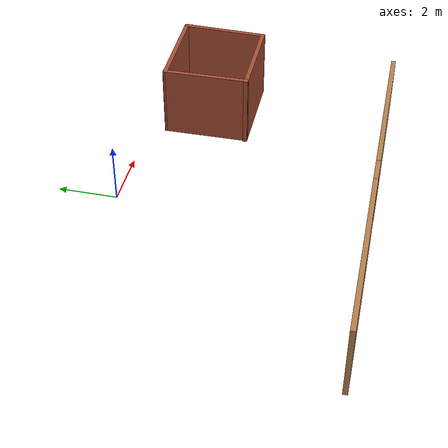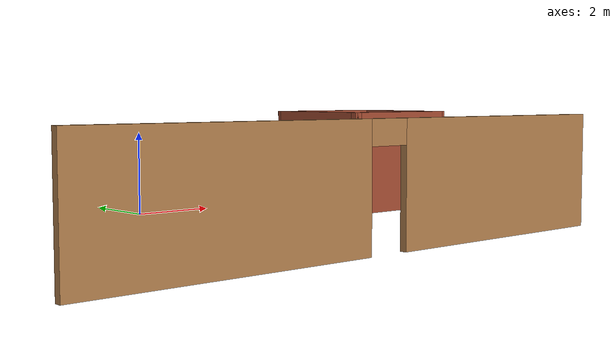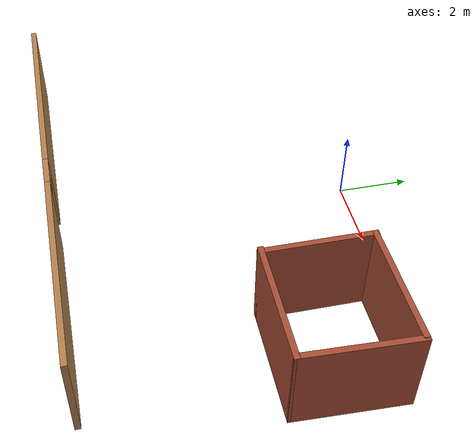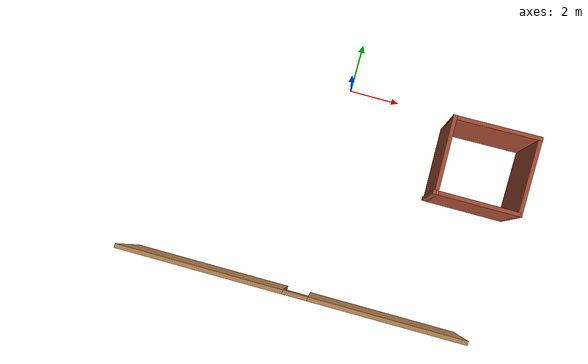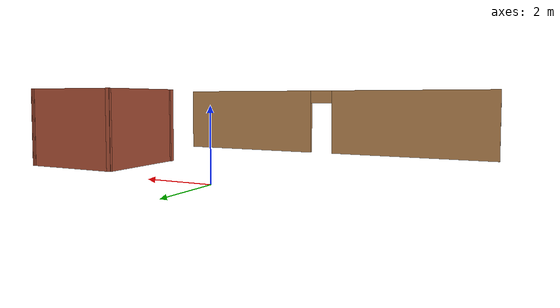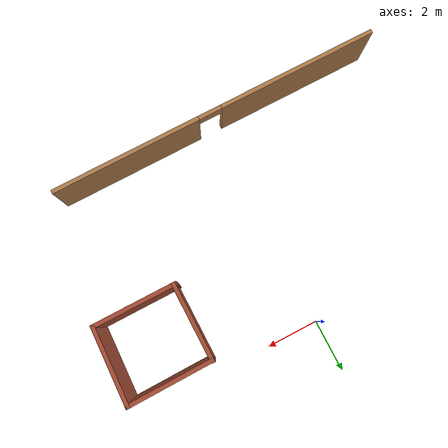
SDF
<?xml version='1.0'?>
<sdf version='1.7'>
  <model name='academy_wall'>
    <pose>0.406534 -4.1875 0 0 -0 0</pose>
    <link name='Wall_2'>
      <collision name='Wall_2_Collision'>
        <geometry>
          <box>
            <size>3.25 0.15 2.5</size>
          </box>
        </geometry>
        <pose>0 0 1.25 0 -0 0</pose>
      </collision>
      <visual name='Wall_2_Visual'>
        <pose>0 0 1.25 0 -0 0</pose>
        <geometry>
          <box>
            <size>3.25 0.15 2.5</size>
          </box>
        </geometry>
        <material>
          <script>
            <uri>file://media/materials/scripts/gazebo.material</uri>
            <name>Gazebo/Bricks</name>
          </script>
          <ambient>1 1 1 1</ambient>
        </material>
        <meta>
          <layer>0</layer>
        </meta>
      </visual>
      <pose>5.10347 0.6775 0 0 -0 0</pose>
    </link>
    <link name='Wall_3'>
      <collision name='Wall_3_Collision'>
        <geometry>
          <box>
            <size>3.02251 0.15 2.5</size>
          </box>
        </geometry>
        <pose>0 0 1.25 0 -0 0</pose>
      </collision>
      <visual name='Wall_3_Visual'>
        <pose>0 0 1.25 0 -0 0</pose>
        <geometry>
          <box>
            <size>3.02251 0.15 2.5</size>
          </box>
        </geometry>
        <material>
          <script>
            <uri>file://media/materials/scripts/gazebo.material</uri>
            <name>Gazebo/Bricks</name>
          </script>
          <ambient>1 1 1 1</ambient>
        </material>
        <meta>
          <layer>0</layer>
        </meta>
      </visual>
      <pose>6.71347 2.1125 0 0 -0 1.52901</pose>
    </link>
    <link name='Wall_4'>
      <collision name='Wall_4_Collision'>
        <geometry>
          <box>
            <size>3.31014 0.15 2.5</size>
          </box>
        </geometry>
        <pose>0 0 1.25 0 -0 0</pose>
      </collision>
      <visual name='Wall_4_Visual'>
        <pose>0 0 1.25 0 -0 0</pose>
        <geometry>
          <box>
            <size>3.31014 0.15 2.5</size>
          </box>
        </geometry>
        <material>
          <script>
            <uri>file://media/materials/scripts/gazebo.material</uri>
            <name>Gazebo/Bricks</name>
          </script>
          <ambient>1 1 1 1</ambient>
        </material>
        <meta>
          <layer>0</layer>
        </meta>
      </visual>
      <pose>5.18347 3.5325 0 0 -0 -3.1321</pose>
    </link>
    <link name='Wall_5'>
      <collision name='Wall_5_Collision'>
        <geometry>
          <box>
            <size>3 0.15 2.5</size>
          </box>
        </geometry>
        <pose>0 0 1.25 0 -0 0</pose>
      </collision>
      <visual name='Wall_5_Visual'>
        <pose>0 0 1.25 0 -0 0</pose>
        <geometry>
          <box>
            <size>3 0.15 2.5</size>
          </box>
        </geometry>
        <material>
          <script>
            <uri>file://media/materials/scripts/gazebo.material</uri>
            <name>Gazebo/Bricks</name>
          </script>
          <ambient>1 1 1 1</ambient>
        </material>
        <meta>
          <layer>0</layer>
        </meta>
      </visual>
      <pose>3.60347 2.1025 0 0 -0 -1.5708</pose>
    </link>
    <link name='Wall_9'>
      <pose>-0.476534 -4.1125 0 0 -0 0</pose>
      <visual name='Wall_9_Visual_0'>
        <pose>-3.3175 0 1.25 0 -0 0</pose>
        <geometry>
          <box>
            <size>6.115 0.15 2.5</size>
          </box>
        </geometry>
        <material>
          <script>
            <uri>file://media/materials/scripts/gazebo.material</uri>
            <name>Gazebo/Wood</name>
          </script>
          <ambient>1 1 1 1</ambient>
        </material>
        <meta>
          <layer>0</layer>
        </meta>
      </visual>
      <collision name='Wall_9_Collision_0'>
        <geometry>
          <box>
            <size>6.115 0.15 2.5</size>
          </box>
        </geometry>
        <pose>-3.3175 0 1.25 0 -0 0</pose>
      </collision>
      <visual name='Wall_9_Visual_1'>
        <pose>3.5075 0 1.25 0 -0 0</pose>
        <geometry>
          <box>
            <size>5.735 0.15 2.5</size>
          </box>
        </geometry>
        <material>
          <script>
            <uri>file://media/materials/scripts/gazebo.material</uri>
            <name>Gazebo/Wood</name>
          </script>
          <ambient>1 1 1 1</ambient>
        </material>
        <meta>
          <layer>0</layer>
        </meta>
      </visual>
      <collision name='Wall_9_Collision_1'>
        <geometry>
          <box>
            <size>5.735 0.15 2.5</size>
          </box>
        </geometry>
        <pose>3.5075 0 1.25 0 -0 0</pose>
      </collision>
      <visual name='Wall_9_Visual_2'>
        <pose>0.19 0 2.25 0 -0 0</pose>
        <geometry>
          <box>
            <size>0.9 0.15 0.5</size>
          </box>
        </geometry>
        <material>
          <script>
            <uri>file://media/materials/scripts/gazebo.material</uri>
            <name>Gazebo/Wood</name>
          </script>
          <ambient>1 1 1 1</ambient>
        </material>
        <meta>
          <layer>0</layer>
        </meta>
      </visual>
      <collision name='Wall_9_Collision_2'>
        <geometry>
          <box>
            <size>0.9 0.15 0.5</size>
          </box>
        </geometry>
        <pose>0.19 0 2.25 0 -0 0</pose>
      </collision>
    </link>
    <static>1</static>
  </model>
</sdf>
